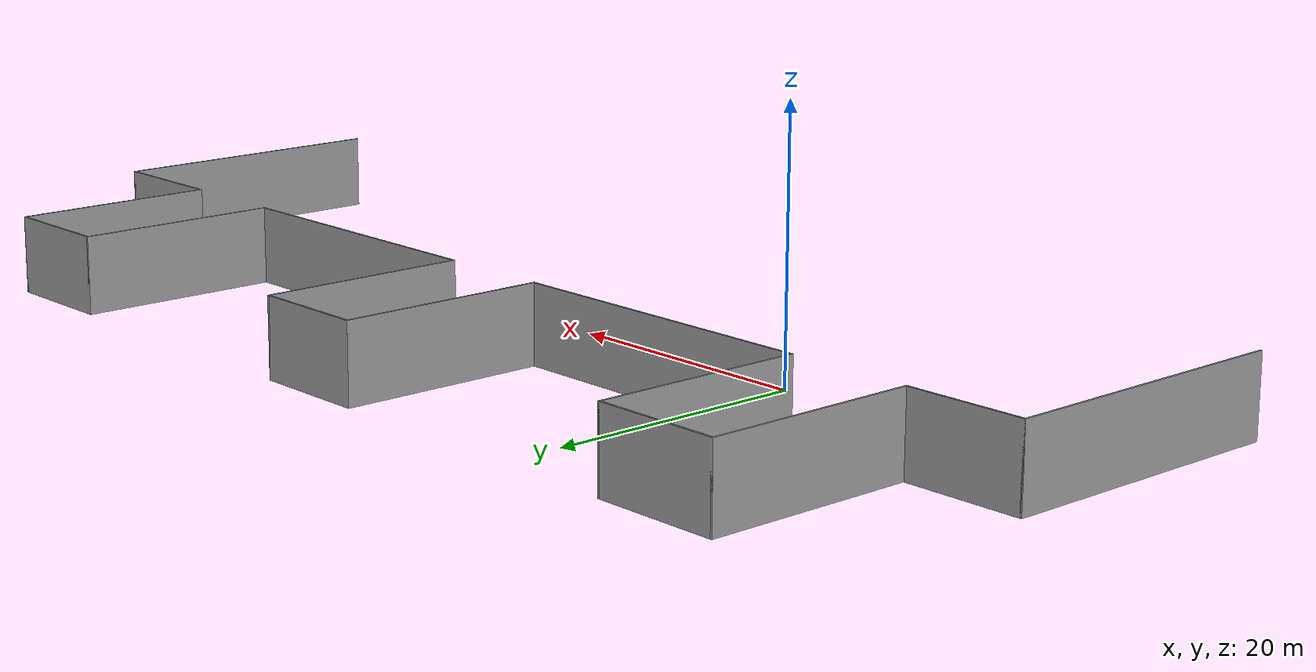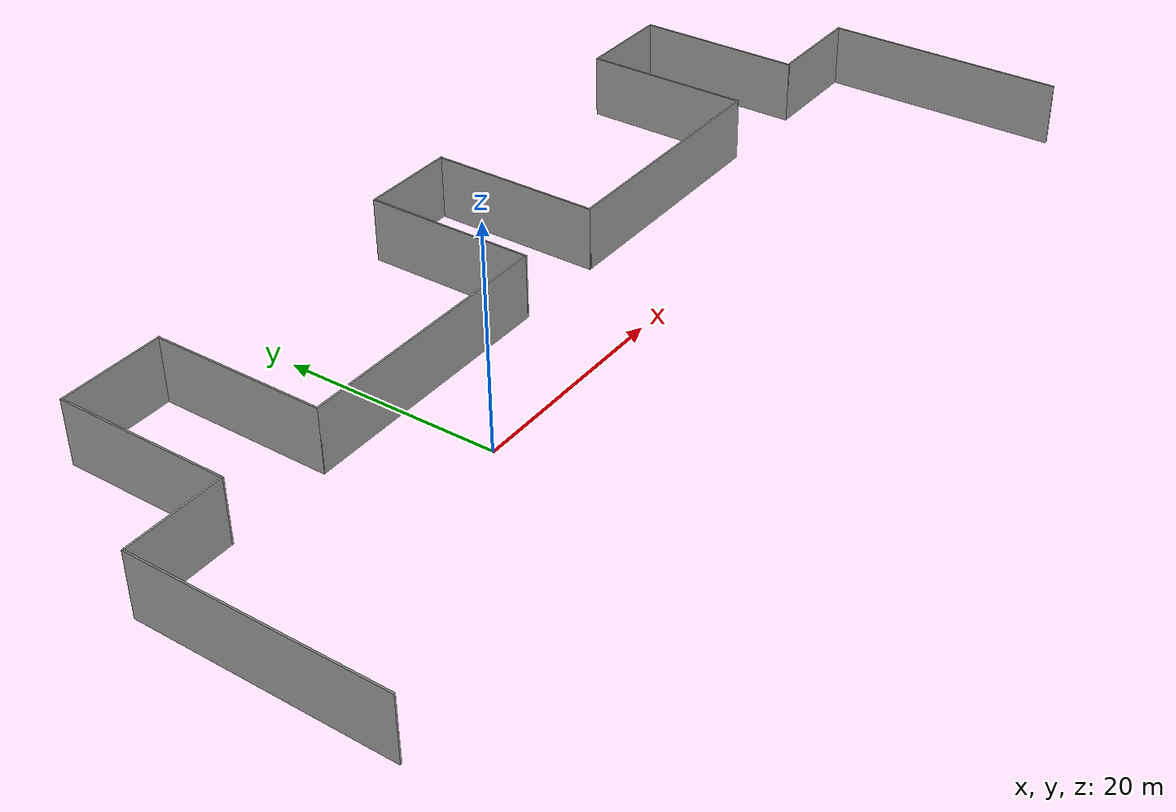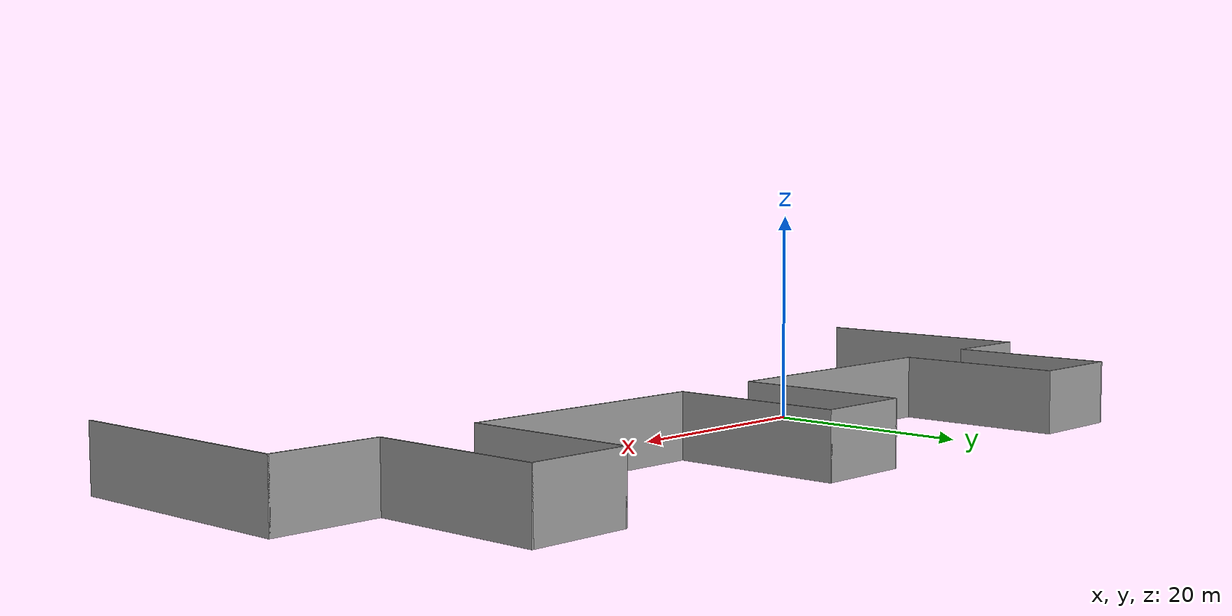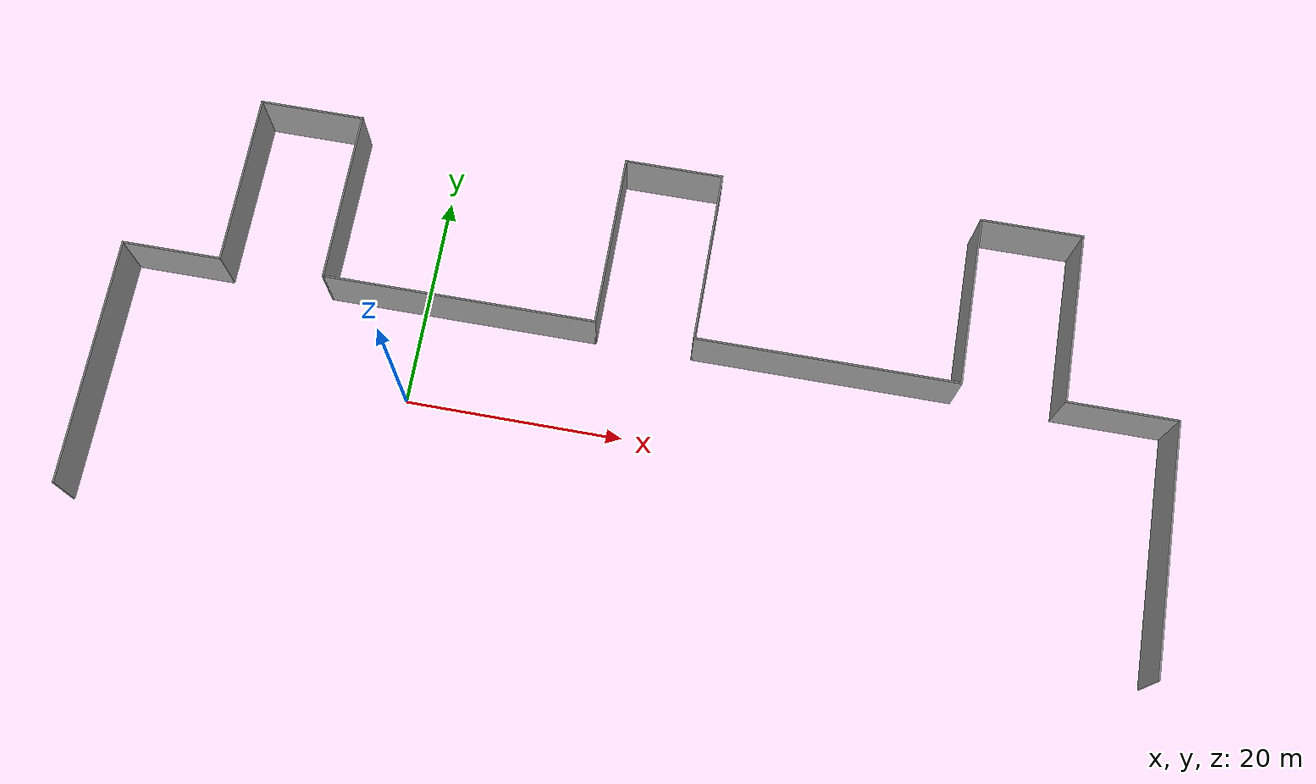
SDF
<?xml version='1.0'?>
<sdf version='1.7'>
  <model name='terminal'>
    <pose>20.314 5.1555 0 0 -0 0</pose>
    <link name='Wall_68'>
      <collision name='Wall_68_Collision'>
        <geometry>
          <box>
            <size>23 0.15 6</size>
          </box>
        </geometry>
        <pose>0 0 3 0 -0 0</pose>
      </collision>
      <visual name='Wall_68_Visual'>
        <pose>0 0 3 0 -0 0</pose>
        <geometry>
          <box>
            <size>23 0.15 6</size>
          </box>
        </geometry>
        <material>
          <script>
            <uri>file://media/materials/scripts/gazebo.material</uri>
            <name>Gazebo/Grey</name>
          </script>
          <ambient>1 1 1 1</ambient>
        </material>
        <meta>
          <layer>0</layer>
        </meta>
      </visual>
      <pose>-47.996 -7.8745 0 0 -0 1.5708</pose>
    </link>
    <link name='Wall_69'>
      <collision name='Wall_69_Collision'>
        <geometry>
          <box>
            <size>9.25 0.15 6</size>
          </box>
        </geometry>
        <pose>0 0 3 0 -0 0</pose>
      </collision>
      <visual name='Wall_69_Visual'>
        <pose>0 0 3 0 -0 0</pose>
        <geometry>
          <box>
            <size>9.25 0.15 6</size>
          </box>
        </geometry>
        <material>
          <script>
            <uri>file://media/materials/scripts/gazebo.material</uri>
            <name>Gazebo/Grey</name>
          </script>
          <ambient>1 1 1 1</ambient>
        </material>
        <meta>
          <layer>0</layer>
        </meta>
      </visual>
      <pose>-43.446 3.5505 0 0 -0 0</pose>
    </link>
    <link name='Wall_70'>
      <collision name='Wall_70_Collision'>
        <geometry>
          <box>
            <size>16.15 0.15 6</size>
          </box>
        </geometry>
        <pose>0 0 3 0 -0 0</pose>
      </collision>
      <visual name='Wall_70_Visual'>
        <pose>0 0 3 0 -0 0</pose>
        <geometry>
          <box>
            <size>16.15 0.15 6</size>
          </box>
        </geometry>
        <material>
          <script>
            <uri>file://media/materials/scripts/gazebo.material</uri>
            <name>Gazebo/Grey</name>
          </script>
          <ambient>1 1 1 1</ambient>
        </material>
        <meta>
          <layer>0</layer>
        </meta>
      </visual>
      <pose>-38.896 11.5505 0 0 -0 1.5708</pose>
    </link>
    <link name='Wall_71'>
      <collision name='Wall_71_Collision'>
        <geometry>
          <box>
            <size>9.738 0.15 6</size>
          </box>
        </geometry>
        <pose>0 0 3 0 -0 0</pose>
      </collision>
      <visual name='Wall_71_Visual'>
        <pose>0 0 3 0 -0 0</pose>
        <geometry>
          <box>
            <size>9.738 0.15 6</size>
          </box>
        </geometry>
        <material>
          <script>
            <uri>file://media/materials/scripts/gazebo.material</uri>
            <name>Gazebo/Grey</name>
          </script>
          <ambient>1 1 1 1</ambient>
        </material>
        <meta>
          <layer>0</layer>
        </meta>
      </visual>
      <pose>-34.102 19.5505 0 0 -0 0</pose>
    </link>
    <link name='Wall_72'>
      <collision name='Wall_72_Collision'>
        <geometry>
          <box>
            <size>16.15 0.15 6</size>
          </box>
        </geometry>
        <pose>0 0 3 0 -0 0</pose>
      </collision>
      <visual name='Wall_72_Visual'>
        <pose>0 0 3 0 -0 0</pose>
        <geometry>
          <box>
            <size>16.15 0.15 6</size>
          </box>
        </geometry>
        <material>
          <script>
            <uri>file://media/materials/scripts/gazebo.material</uri>
            <name>Gazebo/Grey</name>
          </script>
          <ambient>1 1 1 1</ambient>
        </material>
        <meta>
          <layer>0</layer>
        </meta>
      </visual>
      <pose>-29.308 11.5505 0 0 -0 -1.5708</pose>
    </link>
    <link name='Wall_73'>
      <collision name='Wall_73_Collision'>
        <geometry>
          <box>
            <size>25.15 0.15 6</size>
          </box>
        </geometry>
        <pose>0 0 3 0 -0 0</pose>
      </collision>
      <visual name='Wall_73_Visual'>
        <pose>0 0 3 0 -0 0</pose>
        <geometry>
          <box>
            <size>25.15 0.15 6</size>
          </box>
        </geometry>
        <material>
          <script>
            <uri>file://media/materials/scripts/gazebo.material</uri>
            <name>Gazebo/Grey</name>
          </script>
          <ambient>1 1 1 1</ambient>
        </material>
        <meta>
          <layer>0</layer>
        </meta>
      </visual>
      <pose>-16.808 3.5505 0 0 -0 0</pose>
    </link>
    <link name='Wall_74'>
      <collision name='Wall_74_Collision'>
        <geometry>
          <box>
            <size>16.15 0.15 6</size>
          </box>
        </geometry>
        <pose>0 0 3 0 -0 0</pose>
      </collision>
      <visual name='Wall_74_Visual'>
        <pose>0 0 3 0 -0 0</pose>
        <geometry>
          <box>
            <size>16.15 0.15 6</size>
          </box>
        </geometry>
        <material>
          <script>
            <uri>file://media/materials/scripts/gazebo.material</uri>
            <name>Gazebo/Grey</name>
          </script>
          <ambient>1 1 1 1</ambient>
        </material>
        <meta>
          <layer>0</layer>
        </meta>
      </visual>
      <pose>-4.308 11.5505 0 0 -0 1.5708</pose>
    </link>
    <link name='Wall_75'>
      <collision name='Wall_75_Collision'>
        <geometry>
          <box>
            <size>9.15 0.15 6</size>
          </box>
        </geometry>
        <pose>0 0 3 0 -0 0</pose>
      </collision>
      <visual name='Wall_75_Visual'>
        <pose>0 0 3 0 -0 0</pose>
        <geometry>
          <box>
            <size>9.15 0.15 6</size>
          </box>
        </geometry>
        <material>
          <script>
            <uri>file://media/materials/scripts/gazebo.material</uri>
            <name>Gazebo/Grey</name>
          </script>
          <ambient>1 1 1 1</ambient>
        </material>
        <meta>
          <layer>0</layer>
        </meta>
      </visual>
      <pose>0.191999 19.5505 0 0 -0 0</pose>
    </link>
    <link name='Wall_76'>
      <collision name='Wall_76_Collision'>
        <geometry>
          <box>
            <size>16.15 0.15 6</size>
          </box>
        </geometry>
        <pose>0 0 3 0 -0 0</pose>
      </collision>
      <visual name='Wall_76_Visual'>
        <pose>0 0 3 0 -0 0</pose>
        <geometry>
          <box>
            <size>16.15 0.15 6</size>
          </box>
        </geometry>
        <material>
          <script>
            <uri>file://media/materials/scripts/gazebo.material</uri>
            <name>Gazebo/Grey</name>
          </script>
          <ambient>1 1 1 1</ambient>
        </material>
        <meta>
          <layer>0</layer>
        </meta>
      </visual>
      <pose>4.692 11.5505 0 0 -0 -1.5708</pose>
    </link>
    <link name='Wall_77'>
      <collision name='Wall_77_Collision'>
        <geometry>
          <box>
            <size>24.15 0.15 6</size>
          </box>
        </geometry>
        <pose>0 0 3 0 -0 0</pose>
      </collision>
      <visual name='Wall_77_Visual'>
        <pose>0 0 3 0 -0 0</pose>
        <geometry>
          <box>
            <size>24.15 0.15 6</size>
          </box>
        </geometry>
        <material>
          <script>
            <uri>file://media/materials/scripts/gazebo.material</uri>
            <name>Gazebo/Grey</name>
          </script>
          <ambient>1 1 1 1</ambient>
        </material>
        <meta>
          <layer>0</layer>
        </meta>
      </visual>
      <pose>16.692 3.5505 0 0 -0 0</pose>
    </link>
    <link name='Wall_78'>
      <collision name='Wall_78_Collision'>
        <geometry>
          <box>
            <size>16.049 0.15 6</size>
          </box>
        </geometry>
        <pose>0 0 3 0 -0 0</pose>
      </collision>
      <visual name='Wall_78_Visual'>
        <pose>0 0 3 0 -0 0</pose>
        <geometry>
          <box>
            <size>16.049 0.15 6</size>
          </box>
        </geometry>
        <material>
          <script>
            <uri>file://media/materials/scripts/gazebo.material</uri>
            <name>Gazebo/Grey</name>
          </script>
          <ambient>1 1 1 1</ambient>
        </material>
        <meta>
          <layer>0</layer>
        </meta>
      </visual>
      <pose>28.692 11.5 0 0 -0 1.5708</pose>
    </link>
    <link name='Wall_79'>
      <collision name='Wall_79_Collision'>
        <geometry>
          <box>
            <size>9.454 0.15 6</size>
          </box>
        </geometry>
        <pose>0 0 3 0 -0 0</pose>
      </collision>
      <visual name='Wall_79_Visual'>
        <pose>0 0 3 0 -0 0</pose>
        <geometry>
          <box>
            <size>9.454 0.15 6</size>
          </box>
        </geometry>
        <material>
          <script>
            <uri>file://media/materials/scripts/gazebo.material</uri>
            <name>Gazebo/Grey</name>
          </script>
          <ambient>1 1 1 1</ambient>
        </material>
        <meta>
          <layer>0</layer>
        </meta>
      </visual>
      <pose>33.344 19.4495 0 0 -0 0</pose>
    </link>
    <link name='Wall_80'>
      <collision name='Wall_80_Collision'>
        <geometry>
          <box>
            <size>16.15 0.15 6</size>
          </box>
        </geometry>
        <pose>0 0 3 0 -0 0</pose>
      </collision>
      <visual name='Wall_80_Visual'>
        <pose>0 0 3 0 -0 0</pose>
        <geometry>
          <box>
            <size>16.15 0.15 6</size>
          </box>
        </geometry>
        <material>
          <script>
            <uri>file://media/materials/scripts/gazebo.material</uri>
            <name>Gazebo/Grey</name>
          </script>
          <ambient>1 1 1 1</ambient>
        </material>
        <meta>
          <layer>0</layer>
        </meta>
      </visual>
      <pose>37.996 11.4495 0 0 -0 -1.5708</pose>
    </link>
    <link name='Wall_81'>
      <collision name='Wall_81_Collision'>
        <geometry>
          <box>
            <size>10.15 0.15 6</size>
          </box>
        </geometry>
        <pose>0 0 3 0 -0 0</pose>
      </collision>
      <visual name='Wall_81_Visual'>
        <pose>0 0 3 0 -0 0</pose>
        <geometry>
          <box>
            <size>10.15 0.15 6</size>
          </box>
        </geometry>
        <material>
          <script>
            <uri>file://media/materials/scripts/gazebo.material</uri>
            <name>Gazebo/Grey</name>
          </script>
          <ambient>1 1 1 1</ambient>
        </material>
        <meta>
          <layer>0</layer>
        </meta>
      </visual>
      <pose>42.996 3.4495 0 0 -0 0</pose>
    </link>
    <link name='Wall_82'>
      <collision name='Wall_82_Collision'>
        <geometry>
          <box>
            <size>23.15 0.15 6</size>
          </box>
        </geometry>
        <pose>0 0 3 0 -0 0</pose>
      </collision>
      <visual name='Wall_82_Visual'>
        <pose>0 0 3 0 -0 0</pose>
        <geometry>
          <box>
            <size>23.15 0.15 6</size>
          </box>
        </geometry>
        <material>
          <script>
            <uri>file://media/materials/scripts/gazebo.material</uri>
            <name>Gazebo/Grey</name>
          </script>
          <ambient>1 1 1 1</ambient>
        </material>
        <meta>
          <layer>0</layer>
        </meta>
      </visual>
      <pose>47.996 -8.0505 0 0 -0 -1.5708</pose>
    </link>
    <static>1</static>
  </model>
</sdf>
